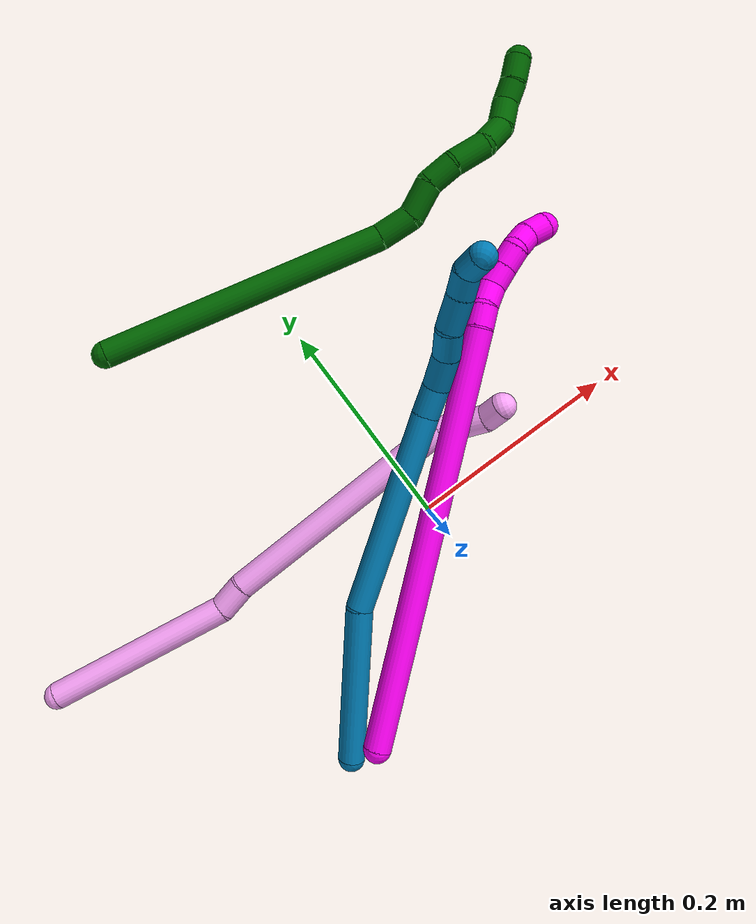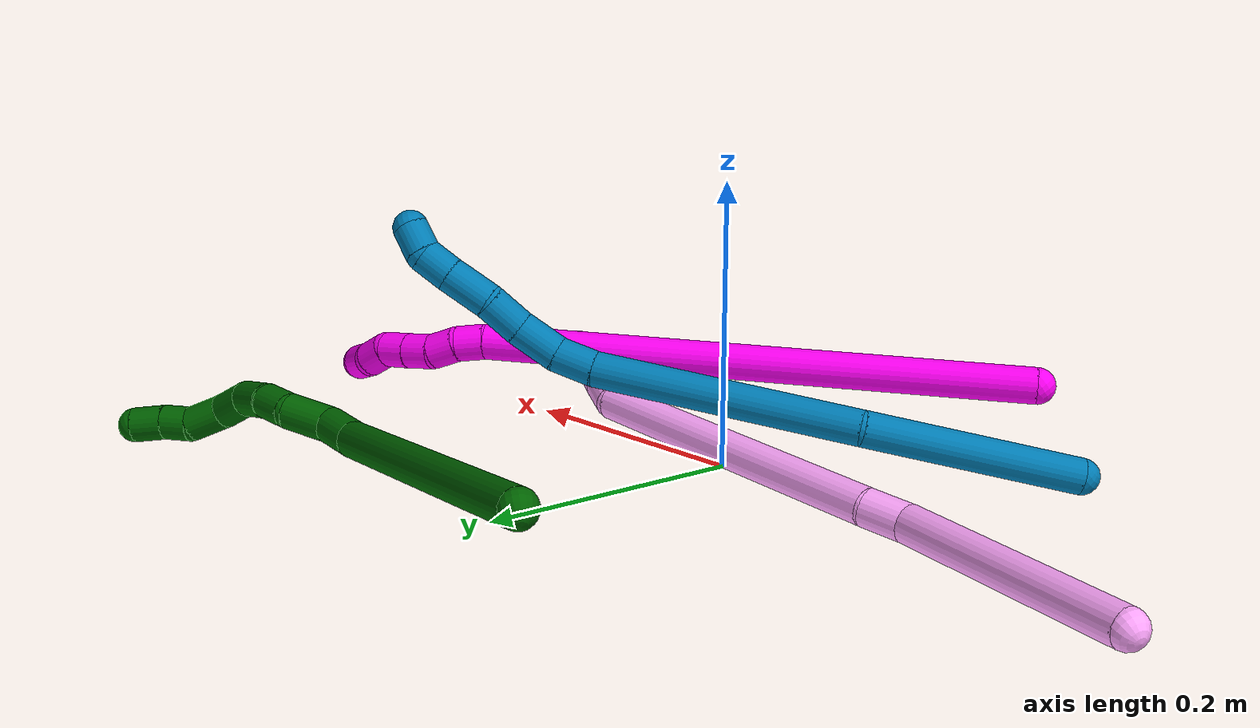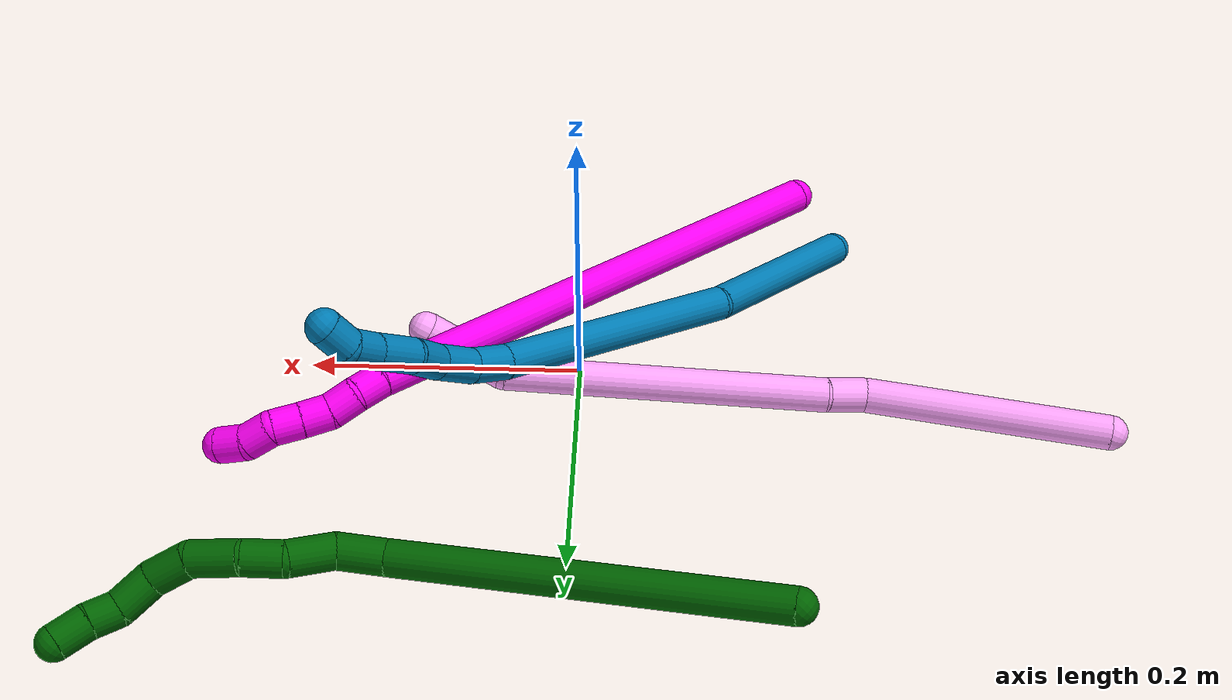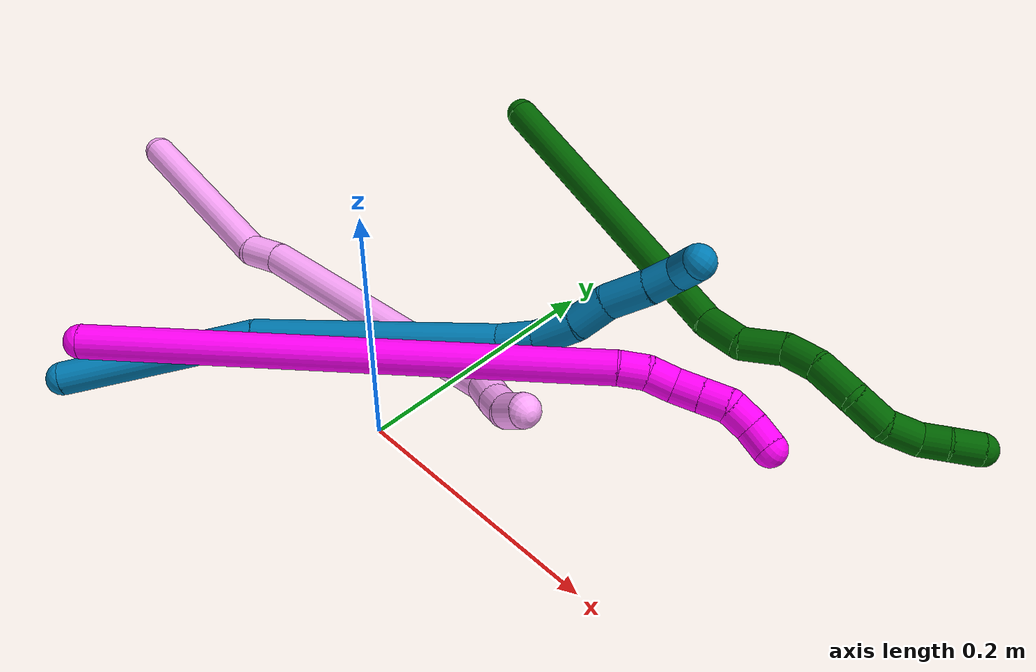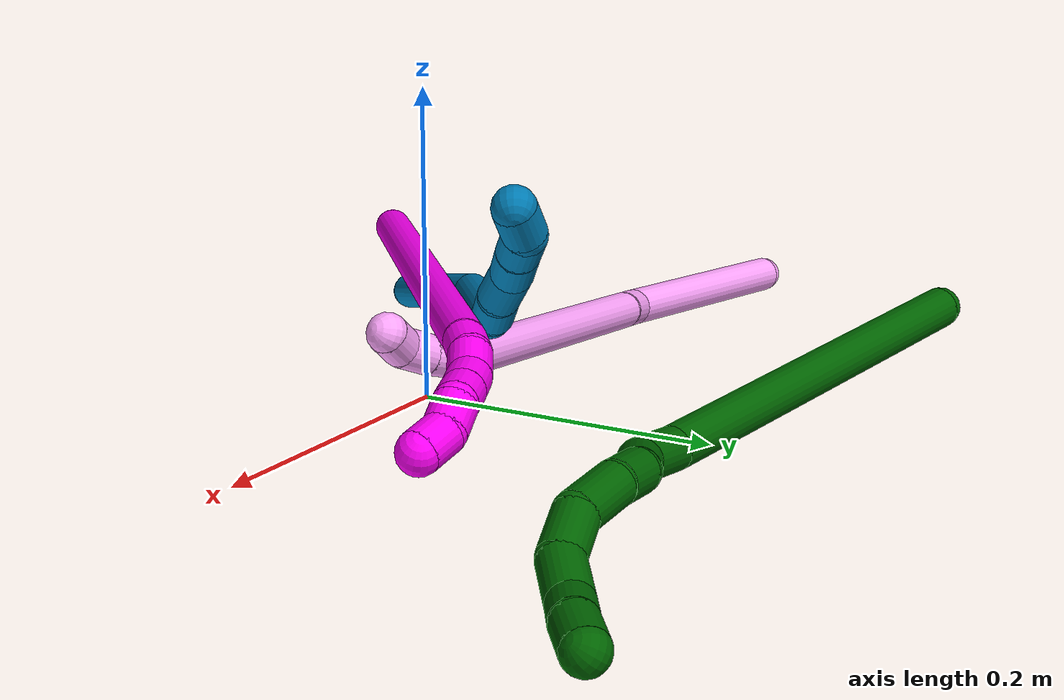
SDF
<sdf version="1.7">
 <world name="default">
  <model name="4">
   <static>0</static>
   <link name="4">
    <collision name="collision-cylinder-e_1_1_4">
     <pose>0.017369 0.023806 -0.082576 -2.86091 0.199422 -1.23237</pose>
     <geometry><cylinder><radius>0.0125</radius><length>0.175353</length></cylinder></geometry>
     <surface>
      <friction><ode><mu>1.16</mu><mu2>1.16</mu2><slip1>0</slip1><slip2>0</slip2></ode></friction>
      <contact><ode><kp>1e+06</kp><kd>1</kd><max_vel>0</max_vel><min_depth>0.001</min_depth></ode></contact>
     </surface>
    </collision>
    <visual name="visual-cylinder-e_1_1_4">
     <pose>0.017369 0.023806 -0.082576 -2.86091 0.199422 -1.23237</pose>
     <geometry><cylinder><radius>0.0125</radius><length>0.175353</length></cylinder></geometry>
     <material><ambient>1 0.65098 0.996078 1</ambient></material>
    </visual>
    <collision name="collision-cylinder-e_2_4_5">
     <pose>0.041721 0.047844 -0.177766 -3.12317 0.50554 -3.07029</pose>
     <geometry><cylinder><radius>0.0125</radius><length>0.028841</length></cylinder></geometry>
     <surface>
      <friction><ode><mu>1.16</mu><mu2>1.16</mu2><slip1>0</slip1><slip2>0</slip2></ode></friction>
      <contact><ode><kp>1e+06</kp><kd>1</kd><max_vel>0</max_vel><min_depth>0.001</min_depth></ode></contact>
     </surface>
    </collision>
    <visual name="visual-cylinder-e_2_4_5">
     <pose>0.041721 0.047844 -0.177766 -3.12317 0.50554 -3.07029</pose>
     <geometry><cylinder><radius>0.0125</radius><length>0.028841</length></cylinder></geometry>
     <material><ambient>1 0.65098 0.996078 1</ambient></material>
    </visual>
    <collision name="collision-cylinder-e_3_5_6">
     <pose>0.089085 0.066392 -0.29714 -2.97169 0.356825 -2.25925</pose>
     <geometry><cylinder><radius>0.0125</radius><length>0.231203</length></cylinder></geometry>
     <surface>
      <friction><ode><mu>1.16</mu><mu2>1.16</mu2><slip1>0</slip1><slip2>0</slip2></ode></friction>
      <contact><ode><kp>1e+06</kp><kd>1</kd><max_vel>0</max_vel><min_depth>0.001</min_depth></ode></contact>
     </surface>
    </collision>
    <visual name="visual-cylinder-e_3_5_6">
     <pose>0.089085 0.066392 -0.29714 -2.97169 0.356825 -2.25925</pose>
     <geometry><cylinder><radius>0.0125</radius><length>0.231203</length></cylinder></geometry>
     <material><ambient>1 0.65098 0.996078 1</ambient></material>
    </visual>
    <collision name="collision-cylinder-e_4_6_7">
     <pose>0.128346 0.086375 -0.415837 -3.00273 -0.092509 1.17453</pose>
     <geometry><cylinder><radius>0.0125</radius><length>0.024208</length></cylinder></geometry>
     <surface>
      <friction><ode><mu>1.16</mu><mu2>1.16</mu2><slip1>0</slip1><slip2>0</slip2></ode></friction>
      <contact><ode><kp>1e+06</kp><kd>1</kd><max_vel>0</max_vel><min_depth>0.001</min_depth></ode></contact>
     </surface>
    </collision>
    <visual name="visual-cylinder-e_4_6_7">
     <pose>0.128346 0.086375 -0.415837 -3.00273 -0.092509 1.17453</pose>
     <geometry><cylinder><radius>0.0125</radius><length>0.024208</length></cylinder></geometry>
     <material><ambient>1 0.65098 0.996078 1</ambient></material>
    </visual>
    <collision name="collision-cylinder-e_5_7_8">
     <pose>0.126192 0.088174 -0.437821 -3.12857 -0.102788 2.88981</pose>
     <geometry><cylinder><radius>0.0125</radius><length>0.020205</length></cylinder></geometry>
     <surface>
      <friction><ode><mu>1.16</mu><mu2>1.16</mu2><slip1>0</slip1><slip2>0</slip2></ode></friction>
      <contact><ode><kp>1e+06</kp><kd>1</kd><max_vel>0</max_vel><min_depth>0.001</min_depth></ode></contact>
     </surface>
    </collision>
    <visual name="visual-cylinder-e_5_7_8">
     <pose>0.126192 0.088174 -0.437821 -3.12857 -0.102788 2.88981</pose>
     <geometry><cylinder><radius>0.0125</radius><length>0.020205</length></cylinder></geometry>
     <material><ambient>1 0.65098 0.996078 1</ambient></material>
    </visual>
    <collision name="collision-cylinder-e_6_8_2">
     <pose>0.126546 0.084743 -0.457213 2.7774 0.138242 0.719259</pose>
     <geometry><cylinder><radius>0.0125</radius><length>0.02019</length></cylinder></geometry>
     <surface>
      <friction><ode><mu>1.16</mu><mu2>1.16</mu2><slip1>0</slip1><slip2>0</slip2></ode></friction>
      <contact><ode><kp>1e+06</kp><kd>1</kd><max_vel>0</max_vel><min_depth>0.001</min_depth></ode></contact>
     </surface>
    </collision>
    <visual name="visual-cylinder-e_6_8_2">
     <pose>0.126546 0.084743 -0.457213 2.7774 0.138242 0.719259</pose>
     <geometry><cylinder><radius>0.0125</radius><length>0.02019</length></cylinder></geometry>
     <material><ambient>1 0.65098 0.996078 1</ambient></material>
    </visual>
    <collision name="collision-sphere-2">
     <pose>0.127937 0.081182 -0.466556 0 -0 0</pose>
     <geometry><sphere><radius>0.0125</radius></sphere></geometry>
     <surface>
      <friction><ode><mu>1.16</mu><mu2>1.16</mu2><slip1>0</slip1><slip2>0</slip2></ode></friction>
      <contact><ode><kp>1e+06</kp><kd>1</kd><max_vel>0</max_vel><min_depth>0.001</min_depth></ode></contact>
     </surface>
    </collision>
    <visual name="visual-sphere-2">
     <pose>0.127937 0.081182 -0.466556 0 -0 0</pose>
     <geometry><sphere><radius>0.0125</radius></sphere></geometry>
     <material><ambient>1 0.65098 0.996078 1</ambient></material>
    </visual>
    <collision name="collision-sphere-4">
     <pose>0.034738 0.047612 -0.165151 0 -0 0</pose>
     <geometry><sphere><radius>0.0125</radius></sphere></geometry>
     <surface>
      <friction><ode><mu>1.16</mu><mu2>1.16</mu2><slip1>0</slip1><slip2>0</slip2></ode></friction>
      <contact><ode><kp>1e+06</kp><kd>1</kd><max_vel>0</max_vel><min_depth>0.001</min_depth></ode></contact>
     </surface>
    </collision>
    <visual name="visual-sphere-4">
     <pose>0.034738 0.047612 -0.165151 0 -0 0</pose>
     <geometry><sphere><radius>0.0125</radius></sphere></geometry>
     <material><ambient>1 0.65098 0.996078 1</ambient></material>
    </visual>
    <collision name="collision-sphere-1">
     <geometry><sphere><radius>0.0125</radius></sphere></geometry>
     <surface>
      <friction><ode><mu>1.16</mu><mu2>1.16</mu2><slip1>0</slip1><slip2>0</slip2></ode></friction>
      <contact><ode><kp>1e+06</kp><kd>1</kd><max_vel>0</max_vel><min_depth>0.001</min_depth></ode></contact>
     </surface>
    </collision>
    <visual name="visual-sphere-1">
     <geometry><sphere><radius>0.0125</radius></sphere></geometry>
     <material><ambient>1 0.65098 0.996078 1</ambient></material>
    </visual>
    <collision name="collision-sphere-8">
     <pose>0.125155 0.088305 -0.44787 0 -0 0</pose>
     <geometry><sphere><radius>0.0125</radius></sphere></geometry>
     <surface>
      <friction><ode><mu>1.16</mu><mu2>1.16</mu2><slip1>0</slip1><slip2>0</slip2></ode></friction>
      <contact><ode><kp>1e+06</kp><kd>1</kd><max_vel>0</max_vel><min_depth>0.001</min_depth></ode></contact>
     </surface>
    </collision>
    <visual name="visual-sphere-8">
     <pose>0.125155 0.088305 -0.44787 0 -0 0</pose>
     <geometry><sphere><radius>0.0125</radius></sphere></geometry>
     <material><ambient>1 0.65098 0.996078 1</ambient></material>
    </visual>
    <collision name="collision-sphere-5">
     <pose>0.048705 0.048077 -0.19038 0 -0 0</pose>
     <geometry><sphere><radius>0.0125</radius></sphere></geometry>
     <surface>
      <friction><ode><mu>1.16</mu><mu2>1.16</mu2><slip1>0</slip1><slip2>0</slip2></ode></friction>
      <contact><ode><kp>1e+06</kp><kd>1</kd><max_vel>0</max_vel><min_depth>0.001</min_depth></ode></contact>
     </surface>
    </collision>
    <visual name="visual-sphere-5">
     <pose>0.048705 0.048077 -0.19038 0 -0 0</pose>
     <geometry><sphere><radius>0.0125</radius></sphere></geometry>
     <material><ambient>1 0.65098 0.996078 1</ambient></material>
    </visual>
    <collision name="collision-sphere-6">
     <pose>0.129464 0.084707 -0.403901 0 -0 0</pose>
     <geometry><sphere><radius>0.0125</radius></sphere></geometry>
     <surface>
      <friction><ode><mu>1.16</mu><mu2>1.16</mu2><slip1>0</slip1><slip2>0</slip2></ode></friction>
      <contact><ode><kp>1e+06</kp><kd>1</kd><max_vel>0</max_vel><min_depth>0.001</min_depth></ode></contact>
     </surface>
    </collision>
    <visual name="visual-sphere-6">
     <pose>0.129464 0.084707 -0.403901 0 -0 0</pose>
     <geometry><sphere><radius>0.0125</radius></sphere></geometry>
     <material><ambient>1 0.65098 0.996078 1</ambient></material>
    </visual>
    <collision name="collision-sphere-7">
     <pose>0.127228 0.088043 -0.427773 0 -0 0</pose>
     <geometry><sphere><radius>0.0125</radius></sphere></geometry>
     <surface>
      <friction><ode><mu>1.16</mu><mu2>1.16</mu2><slip1>0</slip1><slip2>0</slip2></ode></friction>
      <contact><ode><kp>1e+06</kp><kd>1</kd><max_vel>0</max_vel><min_depth>0.001</min_depth></ode></contact>
     </surface>
    </collision>
    <visual name="visual-sphere-7">
     <pose>0.127228 0.088043 -0.427773 0 -0 0</pose>
     <geometry><sphere><radius>0.0125</radius></sphere></geometry>
     <material><ambient>1 0.65098 0.996078 1</ambient></material>
    </visual>
    <inertial>
     <pose>0.066115 0.052976 -0.232901 0 -0 0</pose>
     <mass>0.5</mass>
     <inertia>
      <ixx>-0.001633</ixx>
      <ixy>0</ixy>
      <ixz>0</ixz>
      <iyy>-0.000585</iyy>
      <iyz>0</iyz>
      <izz>-0.000779</izz>
     </inertia>
    </inertial>
   </link>
   <pose>-0.380428 0.068036 0.011842 -1.96076 0.295517 1.2</pose>
  </model>
  <model name="6">
   <static>0</static>
   <link name="6">
    <collision name="collision-cylinder-e_1_1_4">
     <pose>0.092838 -0.007052 -0.096314 3.0685 0.76569 2.96052</pose>
     <geometry><cylinder><radius>0.0125</radius><length>0.267918</length></cylinder></geometry>
     <surface>
      <friction><ode><mu>1.16</mu><mu2>1.16</mu2><slip1>0</slip1><slip2>0</slip2></ode></friction>
      <contact><ode><kp>1e+06</kp><kd>1</kd><max_vel>0</max_vel><min_depth>0.001</min_depth></ode></contact>
     </surface>
    </collision>
    <visual name="visual-cylinder-e_1_1_4">
     <pose>0.092838 -0.007052 -0.096314 3.0685 0.76569 2.96052</pose>
     <geometry><cylinder><radius>0.0125</radius><length>0.267918</length></cylinder></geometry>
     <material><ambient>0 0.392157 0.003922 1</ambient></material>
    </visual>
    <collision name="collision-cylinder-e_2_4_5">
     <pose>0.195314 -0.018119 -0.206105 2.85207 0.600814 2.26189</pose>
     <geometry><cylinder><radius>0.0125</radius><length>0.034098</length></cylinder></geometry>
     <surface>
      <friction><ode><mu>1.16</mu><mu2>1.16</mu2><slip1>0</slip1><slip2>0</slip2></ode></friction>
      <contact><ode><kp>1e+06</kp><kd>1</kd><max_vel>0</max_vel><min_depth>0.001</min_depth></ode></contact>
     </surface>
    </collision>
    <visual name="visual-cylinder-e_2_4_5">
     <pose>0.195314 -0.018119 -0.206105 2.85207 0.600814 2.26189</pose>
     <geometry><cylinder><radius>0.0125</radius><length>0.034098</length></cylinder></geometry>
     <material><ambient>0 0.392157 0.003922 1</ambient></material>
    </visual>
    <collision name="collision-cylinder-e_3_5_6">
     <pose>0.212034 -0.033698 -0.229686 2.28885 0.432122 0.900233</pose>
     <geometry><cylinder><radius>0.0125</radius><length>0.033819</length></cylinder></geometry>
     <surface>
      <friction><ode><mu>1.16</mu><mu2>1.16</mu2><slip1>0</slip1><slip2>0</slip2></ode></friction>
      <contact><ode><kp>1e+06</kp><kd>1</kd><max_vel>0</max_vel><min_depth>0.001</min_depth></ode></contact>
     </surface>
    </collision>
    <visual name="visual-cylinder-e_3_5_6">
     <pose>0.212034 -0.033698 -0.229686 2.28885 0.432122 0.900233</pose>
     <geometry><cylinder><radius>0.0125</radius><length>0.033819</length></cylinder></geometry>
     <material><ambient>0 0.392157 0.003922 1</ambient></material>
    </visual>
    <collision name="collision-cylinder-e_4_6_7">
     <pose>0.226958 -0.050003 -0.249961 2.70545 0.609887 1.91477</pose>
     <geometry><cylinder><radius>0.0125</radius><length>0.027385</length></cylinder></geometry>
     <surface>
      <friction><ode><mu>1.16</mu><mu2>1.16</mu2><slip1>0</slip1><slip2>0</slip2></ode></friction>
      <contact><ode><kp>1e+06</kp><kd>1</kd><max_vel>0</max_vel><min_depth>0.001</min_depth></ode></contact>
     </surface>
    </collision>
    <visual name="visual-cylinder-e_4_6_7">
     <pose>0.226958 -0.050003 -0.249961 2.70545 0.609887 1.91477</pose>
     <geometry><cylinder><radius>0.0125</radius><length>0.027385</length></cylinder></geometry>
     <material><ambient>0 0.392157 0.003922 1</ambient></material>
    </visual>
    <collision name="collision-cylinder-e_5_7_8">
     <pose>0.247594 -0.057815 -0.271421 2.87599 0.83015 2.55292</pose>
     <geometry><cylinder><radius>0.0125</radius><length>0.034668</length></cylinder></geometry>
     <surface>
      <friction><ode><mu>1.16</mu><mu2>1.16</mu2><slip1>0</slip1><slip2>0</slip2></ode></friction>
      <contact><ode><kp>1e+06</kp><kd>1</kd><max_vel>0</max_vel><min_depth>0.001</min_depth></ode></contact>
     </surface>
    </collision>
    <visual name="visual-cylinder-e_5_7_8">
     <pose>0.247594 -0.057815 -0.271421 2.87599 0.83015 2.55292</pose>
     <geometry><cylinder><radius>0.0125</radius><length>0.034668</length></cylinder></geometry>
     <material><ambient>0 0.392157 0.003922 1</ambient></material>
    </visual>
    <collision name="collision-cylinder-e_6_8_9">
     <pose>0.273388 -0.065475 -0.286804 2.29952 1.12874 1.91026</pose>
     <geometry><cylinder><radius>0.0125</radius><length>0.028767</length></cylinder></geometry>
     <surface>
      <friction><ode><mu>1.16</mu><mu2>1.16</mu2><slip1>0</slip1><slip2>0</slip2></ode></friction>
      <contact><ode><kp>1e+06</kp><kd>1</kd><max_vel>0</max_vel><min_depth>0.001</min_depth></ode></contact>
     </surface>
    </collision>
    <visual name="visual-cylinder-e_6_8_9">
     <pose>0.273388 -0.065475 -0.286804 2.29952 1.12874 1.91026</pose>
     <geometry><cylinder><radius>0.0125</radius><length>0.028767</length></cylinder></geometry>
     <material><ambient>0 0.392157 0.003922 1</ambient></material>
    </visual>
    <collision name="collision-cylinder-e_7_9_10">
     <pose>0.296972 -0.079384 -0.291852 1.67237 0.846294 0.925035</pose>
     <geometry><cylinder><radius>0.0125</radius><length>0.028266</length></cylinder></geometry>
     <surface>
      <friction><ode><mu>1.16</mu><mu2>1.16</mu2><slip1>0</slip1><slip2>0</slip2></ode></friction>
      <contact><ode><kp>1e+06</kp><kd>1</kd><max_vel>0</max_vel><min_depth>0.001</min_depth></ode></contact>
     </surface>
    </collision>
    <visual name="visual-cylinder-e_7_9_10">
     <pose>0.296972 -0.079384 -0.291852 1.67237 0.846294 0.925035</pose>
     <geometry><cylinder><radius>0.0125</radius><length>0.028266</length></cylinder></geometry>
     <material><ambient>0 0.392157 0.003922 1</ambient></material>
    </visual>
    <collision name="collision-cylinder-e_8_10_11">
     <pose>0.313038 -0.096603 -0.296998 2.05908 0.549946 0.877592</pose>
     <geometry><cylinder><radius>0.0125</radius><length>0.020984</length></cylinder></geometry>
     <surface>
      <friction><ode><mu>1.16</mu><mu2>1.16</mu2><slip1>0</slip1><slip2>0</slip2></ode></friction>
      <contact><ode><kp>1e+06</kp><kd>1</kd><max_vel>0</max_vel><min_depth>0.001</min_depth></ode></contact>
     </surface>
    </collision>
    <visual name="visual-cylinder-e_8_10_11">
     <pose>0.313038 -0.096603 -0.296998 2.05908 0.549946 0.877592</pose>
     <geometry><cylinder><radius>0.0125</radius><length>0.020984</length></cylinder></geometry>
     <material><ambient>0 0.392157 0.003922 1</ambient></material>
    </visual>
    <collision name="collision-cylinder-e_9_11_2">
     <pose>0.32541 -0.113985 -0.303984 1.85691 0.608578 0.794811</pose>
     <geometry><cylinder><radius>0.0125</radius><length>0.024096</length></cylinder></geometry>
     <surface>
      <friction><ode><mu>1.16</mu><mu2>1.16</mu2><slip1>0</slip1><slip2>0</slip2></ode></friction>
      <contact><ode><kp>1e+06</kp><kd>1</kd><max_vel>0</max_vel><min_depth>0.001</min_depth></ode></contact>
     </surface>
    </collision>
    <visual name="visual-cylinder-e_9_11_2">
     <pose>0.32541 -0.113985 -0.303984 1.85691 0.608578 0.794811</pose>
     <geometry><cylinder><radius>0.0125</radius><length>0.024096</length></cylinder></geometry>
     <material><ambient>0 0.392157 0.003922 1</ambient></material>
    </visual>
    <collision name="collision-sphere-2">
     <pose>0.332298 -0.123468 -0.306773 0 -0 0</pose>
     <geometry><sphere><radius>0.0125</radius></sphere></geometry>
     <surface>
      <friction><ode><mu>1.16</mu><mu2>1.16</mu2><slip1>0</slip1><slip2>0</slip2></ode></friction>
      <contact><ode><kp>1e+06</kp><kd>1</kd><max_vel>0</max_vel><min_depth>0.001</min_depth></ode></contact>
     </surface>
    </collision>
    <visual name="visual-sphere-2">
     <pose>0.332298 -0.123468 -0.306773 0 -0 0</pose>
     <geometry><sphere><radius>0.0125</radius></sphere></geometry>
     <material><ambient>0 0.392157 0.003922 1</ambient></material>
    </visual>
    <collision name="collision-sphere-11">
     <pose>0.318522 -0.104502 -0.301194 0 -0 0</pose>
     <geometry><sphere><radius>0.0125</radius></sphere></geometry>
     <surface>
      <friction><ode><mu>1.16</mu><mu2>1.16</mu2><slip1>0</slip1><slip2>0</slip2></ode></friction>
      <contact><ode><kp>1e+06</kp><kd>1</kd><max_vel>0</max_vel><min_depth>0.001</min_depth></ode></contact>
     </surface>
    </collision>
    <visual name="visual-sphere-11">
     <pose>0.318522 -0.104502 -0.301194 0 -0 0</pose>
     <geometry><sphere><radius>0.0125</radius></sphere></geometry>
     <material><ambient>0 0.392157 0.003922 1</ambient></material>
    </visual>
    <collision name="collision-sphere-10">
     <pose>0.307555 -0.088703 -0.292801 0 -0 0</pose>
     <geometry><sphere><radius>0.0125</radius></sphere></geometry>
     <surface>
      <friction><ode><mu>1.16</mu><mu2>1.16</mu2><slip1>0</slip1><slip2>0</slip2></ode></friction>
      <contact><ode><kp>1e+06</kp><kd>1</kd><max_vel>0</max_vel><min_depth>0.001</min_depth></ode></contact>
     </surface>
    </collision>
    <visual name="visual-sphere-10">
     <pose>0.307555 -0.088703 -0.292801 0 -0 0</pose>
     <geometry><sphere><radius>0.0125</radius></sphere></geometry>
     <material><ambient>0 0.392157 0.003922 1</ambient></material>
    </visual>
    <collision name="collision-sphere-9">
     <pose>0.286389 -0.070066 -0.290902 0 -0 0</pose>
     <geometry><sphere><radius>0.0125</radius></sphere></geometry>
     <surface>
      <friction><ode><mu>1.16</mu><mu2>1.16</mu2><slip1>0</slip1><slip2>0</slip2></ode></friction>
      <contact><ode><kp>1e+06</kp><kd>1</kd><max_vel>0</max_vel><min_depth>0.001</min_depth></ode></contact>
     </surface>
    </collision>
    <visual name="visual-sphere-9">
     <pose>0.286389 -0.070066 -0.290902 0 -0 0</pose>
     <geometry><sphere><radius>0.0125</radius></sphere></geometry>
     <material><ambient>0 0.392157 0.003922 1</ambient></material>
    </visual>
    <collision name="collision-sphere-4">
     <pose>0.185676 -0.014104 -0.192627 0 -0 0</pose>
     <geometry><sphere><radius>0.0125</radius></sphere></geometry>
     <surface>
      <friction><ode><mu>1.16</mu><mu2>1.16</mu2><slip1>0</slip1><slip2>0</slip2></ode></friction>
      <contact><ode><kp>1e+06</kp><kd>1</kd><max_vel>0</max_vel><min_depth>0.001</min_depth></ode></contact>
     </surface>
    </collision>
    <visual name="visual-sphere-4">
     <pose>0.185676 -0.014104 -0.192627 0 -0 0</pose>
     <geometry><sphere><radius>0.0125</radius></sphere></geometry>
     <material><ambient>0 0.392157 0.003922 1</ambient></material>
    </visual>
    <collision name="collision-sphere-1">
     <geometry><sphere><radius>0.0125</radius></sphere></geometry>
     <surface>
      <friction><ode><mu>1.16</mu><mu2>1.16</mu2><slip1>0</slip1><slip2>0</slip2></ode></friction>
      <contact><ode><kp>1e+06</kp><kd>1</kd><max_vel>0</max_vel><min_depth>0.001</min_depth></ode></contact>
     </surface>
    </collision>
    <visual name="visual-sphere-1">
     <geometry><sphere><radius>0.0125</radius></sphere></geometry>
     <material><ambient>0 0.392157 0.003922 1</ambient></material>
    </visual>
    <collision name="collision-sphere-8">
     <pose>0.260387 -0.060885 -0.282707 0 -0 0</pose>
     <geometry><sphere><radius>0.0125</radius></sphere></geometry>
     <surface>
      <friction><ode><mu>1.16</mu><mu2>1.16</mu2><slip1>0</slip1><slip2>0</slip2></ode></friction>
      <contact><ode><kp>1e+06</kp><kd>1</kd><max_vel>0</max_vel><min_depth>0.001</min_depth></ode></contact>
     </surface>
    </collision>
    <visual name="visual-sphere-8">
     <pose>0.260387 -0.060885 -0.282707 0 -0 0</pose>
     <geometry><sphere><radius>0.0125</radius></sphere></geometry>
     <material><ambient>0 0.392157 0.003922 1</ambient></material>
    </visual>
    <collision name="collision-sphere-5">
     <pose>0.204952 -0.022134 -0.219583 0 -0 0</pose>
     <geometry><sphere><radius>0.0125</radius></sphere></geometry>
     <surface>
      <friction><ode><mu>1.16</mu><mu2>1.16</mu2><slip1>0</slip1><slip2>0</slip2></ode></friction>
      <contact><ode><kp>1e+06</kp><kd>1</kd><max_vel>0</max_vel><min_depth>0.001</min_depth></ode></contact>
     </surface>
    </collision>
    <visual name="visual-sphere-5">
     <pose>0.204952 -0.022134 -0.219583 0 -0 0</pose>
     <geometry><sphere><radius>0.0125</radius></sphere></geometry>
     <material><ambient>0 0.392157 0.003922 1</ambient></material>
    </visual>
    <collision name="collision-sphere-6">
     <pose>0.219116 -0.045262 -0.239788 0 -0 0</pose>
     <geometry><sphere><radius>0.0125</radius></sphere></geometry>
     <surface>
      <friction><ode><mu>1.16</mu><mu2>1.16</mu2><slip1>0</slip1><slip2>0</slip2></ode></friction>
      <contact><ode><kp>1e+06</kp><kd>1</kd><max_vel>0</max_vel><min_depth>0.001</min_depth></ode></contact>
     </surface>
    </collision>
    <visual name="visual-sphere-6">
     <pose>0.219116 -0.045262 -0.239788 0 -0 0</pose>
     <geometry><sphere><radius>0.0125</radius></sphere></geometry>
     <material><ambient>0 0.392157 0.003922 1</ambient></material>
    </visual>
    <collision name="collision-sphere-7">
     <pose>0.234801 -0.054745 -0.260134 0 -0 0</pose>
     <geometry><sphere><radius>0.0125</radius></sphere></geometry>
     <surface>
      <friction><ode><mu>1.16</mu><mu2>1.16</mu2><slip1>0</slip1><slip2>0</slip2></ode></friction>
      <contact><ode><kp>1e+06</kp><kd>1</kd><max_vel>0</max_vel><min_depth>0.001</min_depth></ode></contact>
     </surface>
    </collision>
    <visual name="visual-sphere-7">
     <pose>0.234801 -0.054745 -0.260134 0 -0 0</pose>
     <geometry><sphere><radius>0.0125</radius></sphere></geometry>
     <material><ambient>0 0.392157 0.003922 1</ambient></material>
    </visual>
    <inertial>
     <pose>0.168342 -0.031843 -0.173822 0 -0 0</pose>
     <mass>0.5</mass>
     <inertia>
      <ixx>-0.000894</ixx>
      <ixy>0</ixy>
      <ixz>0</ixz>
      <iyy>0.001825</iyy>
      <iyz>0</iyz>
      <izz>-0.001062</izz>
     </inertia>
    </inertial>
   </link>
   <pose>-0.1473 0.287963 0.063211 -2.78585 0.891448 -0.018324</pose>
  </model>
  <model name="9">
   <static>0</static>
   <link name="9">
    <collision name="collision-cylinder-e_1_1_4">
     <pose>-0.007329 0.059676 -0.044658 -2.21324 -0.098008 0.19529</pose>
     <geometry><cylinder><radius>0.0125</radius><length>0.149789</length></cylinder></geometry>
     <surface>
      <friction><ode><mu>1.16</mu><mu2>1.16</mu2><slip1>0</slip1><slip2>0</slip2></ode></friction>
      <contact><ode><kp>1e+06</kp><kd>1</kd><max_vel>0</max_vel><min_depth>0.001</min_depth></ode></contact>
     </surface>
    </collision>
    <visual name="visual-cylinder-e_1_1_4">
     <pose>-0.007329 0.059676 -0.044658 -2.21324 -0.098008 0.19529</pose>
     <geometry><cylinder><radius>0.0125</radius><length>0.149789</length></cylinder></geometry>
     <material><ambient>0 0.490196 0.709804 1</ambient></material>
    </visual>
    <collision name="collision-cylinder-e_2_4_5">
     <pose>-0.00122 0.185245 -0.153093 -2.33988 0.145497 -0.340588</pose>
     <geometry><cylinder><radius>0.0125</radius><length>0.185366</length></cylinder></geometry>
     <surface>
      <friction><ode><mu>1.16</mu><mu2>1.16</mu2><slip1>0</slip1><slip2>0</slip2></ode></friction>
      <contact><ode><kp>1e+06</kp><kd>1</kd><max_vel>0</max_vel><min_depth>0.001</min_depth></ode></contact>
     </surface>
    </collision>
    <visual name="visual-cylinder-e_2_4_5">
     <pose>-0.00122 0.185245 -0.153093 -2.33988 0.145497 -0.340588</pose>
     <geometry><cylinder><radius>0.0125</radius><length>0.185366</length></cylinder></geometry>
     <material><ambient>0 0.490196 0.709804 1</ambient></material>
    </visual>
    <collision name="collision-cylinder-e_3_5_6">
     <pose>0.014903 0.262404 -0.224835 -2.18613 0.192211 -0.368186</pose>
     <geometry><cylinder><radius>0.0125</radius><length>0.028111</length></cylinder></geometry>
     <surface>
      <friction><ode><mu>1.16</mu><mu2>1.16</mu2><slip1>0</slip1><slip2>0</slip2></ode></friction>
      <contact><ode><kp>1e+06</kp><kd>1</kd><max_vel>0</max_vel><min_depth>0.001</min_depth></ode></contact>
     </surface>
    </collision>
    <visual name="visual-cylinder-e_3_5_6">
     <pose>0.014903 0.262404 -0.224835 -2.18613 0.192211 -0.368186</pose>
     <geometry><cylinder><radius>0.0125</radius><length>0.028111</length></cylinder></geometry>
     <material><ambient>0 0.490196 0.709804 1</ambient></material>
    </visual>
    <collision name="collision-cylinder-e_4_6_7">
     <pose>0.020347 0.288429 -0.238071 -1.9139 0.174233 -0.246629</pose>
     <geometry><cylinder><radius>0.0125</radius><length>0.031826</length></cylinder></geometry>
     <surface>
      <friction><ode><mu>1.16</mu><mu2>1.16</mu2><slip1>0</slip1><slip2>0</slip2></ode></friction>
      <contact><ode><kp>1e+06</kp><kd>1</kd><max_vel>0</max_vel><min_depth>0.001</min_depth></ode></contact>
     </surface>
    </collision>
    <visual name="visual-cylinder-e_4_6_7">
     <pose>0.020347 0.288429 -0.238071 -1.9139 0.174233 -0.246629</pose>
     <geometry><cylinder><radius>0.0125</radius><length>0.031826</length></cylinder></geometry>
     <material><ambient>0 0.490196 0.709804 1</ambient></material>
    </visual>
    <collision name="collision-cylinder-e_5_7_8">
     <pose>0.023455 0.316928 -0.245384 -1.71819 0.025187 -0.029203</pose>
     <geometry><cylinder><radius>0.0125</radius><length>0.027791</length></cylinder></geometry>
     <surface>
      <friction><ode><mu>1.16</mu><mu2>1.16</mu2><slip1>0</slip1><slip2>0</slip2></ode></friction>
      <contact><ode><kp>1e+06</kp><kd>1</kd><max_vel>0</max_vel><min_depth>0.001</min_depth></ode></contact>
     </surface>
    </collision>
    <visual name="visual-cylinder-e_5_7_8">
     <pose>0.023455 0.316928 -0.245384 -1.71819 0.025187 -0.029203</pose>
     <geometry><cylinder><radius>0.0125</radius><length>0.027791</length></cylinder></geometry>
     <material><ambient>0 0.490196 0.709804 1</ambient></material>
    </visual>
    <collision name="collision-cylinder-e_6_8_9">
     <pose>0.026757 0.345848 -0.252953 -1.92011 0.180722 -0.257439</pose>
     <geometry><cylinder><radius>0.0125</radius><length>0.032844</length></cylinder></geometry>
     <surface>
      <friction><ode><mu>1.16</mu><mu2>1.16</mu2><slip1>0</slip1><slip2>0</slip2></ode></friction>
      <contact><ode><kp>1e+06</kp><kd>1</kd><max_vel>0</max_vel><min_depth>0.001</min_depth></ode></contact>
     </surface>
    </collision>
    <visual name="visual-cylinder-e_6_8_9">
     <pose>0.026757 0.345848 -0.252953 -1.92011 0.180722 -0.257439</pose>
     <geometry><cylinder><radius>0.0125</radius><length>0.032844</length></cylinder></geometry>
     <material><ambient>0 0.490196 0.709804 1</ambient></material>
    </visual>
    <collision name="collision-cylinder-e_7_9_10">
     <pose>0.031188 0.3719 -0.261454 -1.83763 0.130479 -0.17076</pose>
     <geometry><cylinder><radius>0.0125</radius><length>0.022737</length></cylinder></geometry>
     <surface>
      <friction><ode><mu>1.16</mu><mu2>1.16</mu2><slip1>0</slip1><slip2>0</slip2></ode></friction>
      <contact><ode><kp>1e+06</kp><kd>1</kd><max_vel>0</max_vel><min_depth>0.001</min_depth></ode></contact>
     </surface>
    </collision>
    <visual name="visual-cylinder-e_7_9_10">
     <pose>0.031188 0.3719 -0.261454 -1.83763 0.130479 -0.17076</pose>
     <geometry><cylinder><radius>0.0125</radius><length>0.022737</length></cylinder></geometry>
     <material><ambient>0 0.490196 0.709804 1</ambient></material>
    </visual>
    <collision name="collision-cylinder-e_8_10_2">
     <pose>0.038482 0.39183 -0.264126 -1.53772 0.570509 -0.55289</pose>
     <geometry><cylinder><radius>0.0125</radius><length>0.021535</length></cylinder></geometry>
     <surface>
      <friction><ode><mu>1.16</mu><mu2>1.16</mu2><slip1>0</slip1><slip2>0</slip2></ode></friction>
      <contact><ode><kp>1e+06</kp><kd>1</kd><max_vel>0</max_vel><min_depth>0.001</min_depth></ode></contact>
     </surface>
    </collision>
    <visual name="visual-cylinder-e_8_10_2">
     <pose>0.038482 0.39183 -0.264126 -1.53772 0.570509 -0.55289</pose>
     <geometry><cylinder><radius>0.0125</radius><length>0.021535</length></cylinder></geometry>
     <material><ambient>0 0.490196 0.709804 1</ambient></material>
    </visual>
    <collision name="collision-sphere-2">
     <pose>0.044297 0.400888 -0.263827 0 -0 0</pose>
     <geometry><sphere><radius>0.0125</radius></sphere></geometry>
     <surface>
      <friction><ode><mu>1.16</mu><mu2>1.16</mu2><slip1>0</slip1><slip2>0</slip2></ode></friction>
      <contact><ode><kp>1e+06</kp><kd>1</kd><max_vel>0</max_vel><min_depth>0.001</min_depth></ode></contact>
     </surface>
    </collision>
    <visual name="visual-sphere-2">
     <pose>0.044297 0.400888 -0.263827 0 -0 0</pose>
     <geometry><sphere><radius>0.0125</radius></sphere></geometry>
     <material><ambient>0 0.490196 0.709804 1</ambient></material>
    </visual>
    <collision name="collision-sphere-10">
     <pose>0.032667 0.382773 -0.264426 0 -0 0</pose>
     <geometry><sphere><radius>0.0125</radius></sphere></geometry>
     <surface>
      <friction><ode><mu>1.16</mu><mu2>1.16</mu2><slip1>0</slip1><slip2>0</slip2></ode></friction>
      <contact><ode><kp>1e+06</kp><kd>1</kd><max_vel>0</max_vel><min_depth>0.001</min_depth></ode></contact>
     </surface>
    </collision>
    <visual name="visual-sphere-10">
     <pose>0.032667 0.382773 -0.264426 0 -0 0</pose>
     <geometry><sphere><radius>0.0125</radius></sphere></geometry>
     <material><ambient>0 0.490196 0.709804 1</ambient></material>
    </visual>
    <collision name="collision-sphere-9">
     <pose>0.029709 0.361027 -0.258482 0 -0 0</pose>
     <geometry><sphere><radius>0.0125</radius></sphere></geometry>
     <surface>
      <friction><ode><mu>1.16</mu><mu2>1.16</mu2><slip1>0</slip1><slip2>0</slip2></ode></friction>
      <contact><ode><kp>1e+06</kp><kd>1</kd><max_vel>0</max_vel><min_depth>0.001</min_depth></ode></contact>
     </surface>
    </collision>
    <visual name="visual-sphere-9">
     <pose>0.029709 0.361027 -0.258482 0 -0 0</pose>
     <geometry><sphere><radius>0.0125</radius></sphere></geometry>
     <material><ambient>0 0.490196 0.709804 1</ambient></material>
    </visual>
    <collision name="collision-sphere-4">
     <pose>-0.014657 0.119351 -0.089316 0 -0 0</pose>
     <geometry><sphere><radius>0.0125</radius></sphere></geometry>
     <surface>
      <friction><ode><mu>1.16</mu><mu2>1.16</mu2><slip1>0</slip1><slip2>0</slip2></ode></friction>
      <contact><ode><kp>1e+06</kp><kd>1</kd><max_vel>0</max_vel><min_depth>0.001</min_depth></ode></contact>
     </surface>
    </collision>
    <visual name="visual-sphere-4">
     <pose>-0.014657 0.119351 -0.089316 0 -0 0</pose>
     <geometry><sphere><radius>0.0125</radius></sphere></geometry>
     <material><ambient>0 0.490196 0.709804 1</ambient></material>
    </visual>
    <collision name="collision-sphere-1">
     <geometry><sphere><radius>0.0125</radius></sphere></geometry>
     <surface>
      <friction><ode><mu>1.16</mu><mu2>1.16</mu2><slip1>0</slip1><slip2>0</slip2></ode></friction>
      <contact><ode><kp>1e+06</kp><kd>1</kd><max_vel>0</max_vel><min_depth>0.001</min_depth></ode></contact>
     </surface>
    </collision>
    <visual name="visual-sphere-1">
     <geometry><sphere><radius>0.0125</radius></sphere></geometry>
     <material><ambient>0 0.490196 0.709804 1</ambient></material>
    </visual>
    <collision name="collision-sphere-8">
     <pose>0.023805 0.330669 -0.247424 0 -0 0</pose>
     <geometry><sphere><radius>0.0125</radius></sphere></geometry>
     <surface>
      <friction><ode><mu>1.16</mu><mu2>1.16</mu2><slip1>0</slip1><slip2>0</slip2></ode></friction>
      <contact><ode><kp>1e+06</kp><kd>1</kd><max_vel>0</max_vel><min_depth>0.001</min_depth></ode></contact>
     </surface>
    </collision>
    <visual name="visual-sphere-8">
     <pose>0.023805 0.330669 -0.247424 0 -0 0</pose>
     <geometry><sphere><radius>0.0125</radius></sphere></geometry>
     <material><ambient>0 0.490196 0.709804 1</ambient></material>
    </visual>
    <collision name="collision-sphere-5">
     <pose>0.012218 0.251138 -0.216871 0 -0 0</pose>
     <geometry><sphere><radius>0.0125</radius></sphere></geometry>
     <surface>
      <friction><ode><mu>1.16</mu><mu2>1.16</mu2><slip1>0</slip1><slip2>0</slip2></ode></friction>
      <contact><ode><kp>1e+06</kp><kd>1</kd><max_vel>0</max_vel><min_depth>0.001</min_depth></ode></contact>
     </surface>
    </collision>
    <visual name="visual-sphere-5">
     <pose>0.012218 0.251138 -0.216871 0 -0 0</pose>
     <geometry><sphere><radius>0.0125</radius></sphere></geometry>
     <material><ambient>0 0.490196 0.709804 1</ambient></material>
    </visual>
    <collision name="collision-sphere-6">
     <pose>0.017588 0.273671 -0.232799 0 -0 0</pose>
     <geometry><sphere><radius>0.0125</radius></sphere></geometry>
     <surface>
      <friction><ode><mu>1.16</mu><mu2>1.16</mu2><slip1>0</slip1><slip2>0</slip2></ode></friction>
      <contact><ode><kp>1e+06</kp><kd>1</kd><max_vel>0</max_vel><min_depth>0.001</min_depth></ode></contact>
     </surface>
    </collision>
    <visual name="visual-sphere-6">
     <pose>0.017588 0.273671 -0.232799 0 -0 0</pose>
     <geometry><sphere><radius>0.0125</radius></sphere></geometry>
     <material><ambient>0 0.490196 0.709804 1</ambient></material>
    </visual>
    <collision name="collision-sphere-7">
     <pose>0.023105 0.303188 -0.243344 0 -0 0</pose>
     <geometry><sphere><radius>0.0125</radius></sphere></geometry>
     <surface>
      <friction><ode><mu>1.16</mu><mu2>1.16</mu2><slip1>0</slip1><slip2>0</slip2></ode></friction>
      <contact><ode><kp>1e+06</kp><kd>1</kd><max_vel>0</max_vel><min_depth>0.001</min_depth></ode></contact>
     </surface>
    </collision>
    <visual name="visual-sphere-7">
     <pose>0.023105 0.303188 -0.243344 0 -0 0</pose>
     <geometry><sphere><radius>0.0125</radius></sphere></geometry>
     <material><ambient>0 0.490196 0.709804 1</ambient></material>
    </visual>
    <inertial>
     <pose>0.005622 0.193788 -0.15145 0 -0 0</pose>
     <mass>0.5</mass>
     <inertia>
      <ixx>0.000674</ixx>
      <ixy>0</ixy>
      <ixz>0</ixz>
      <iyy>-0.000597</iyy>
      <iyz>0</iyz>
      <izz>-0.0007</izz>
     </inertia>
    </inertial>
   </link>
   <pose>-0.195282 -0.142147 0.011922 0.893243 -0.231148 -0.84233</pose>
  </model>
  <model name="10">
   <static>0</static>
   <link name="10">
    <collision name="collision-cylinder-e_1_1_4">
     <pose>0.122294 0.084691 -0.117543 -2.51723 0.701077 -1.6953</pose>
     <geometry><cylinder><radius>0.0125</radius><length>0.379182</length></cylinder></geometry>
     <surface>
      <friction><ode><mu>1.16</mu><mu2>1.16</mu2><slip1>0</slip1><slip2>0</slip2></ode></friction>
      <contact><ode><kp>1e+06</kp><kd>1</kd><max_vel>0</max_vel><min_depth>0.001</min_depth></ode></contact>
     </surface>
    </collision>
    <visual name="visual-cylinder-e_1_1_4">
     <pose>0.122294 0.084691 -0.117543 -2.51723 0.701077 -1.6953</pose>
     <geometry><cylinder><radius>0.0125</radius><length>0.379182</length></cylinder></geometry>
     <material><ambient>1 0 0.964706 1</ambient></material>
    </visual>
    <collision name="collision-cylinder-e_2_4_5">
     <pose>0.251896 0.174356 -0.240031 -2.35316 0.805964 -1.5953</pose>
     <geometry><cylinder><radius>0.0125</radius><length>0.02026</length></cylinder></geometry>
     <surface>
      <friction><ode><mu>1.16</mu><mu2>1.16</mu2><slip1>0</slip1><slip2>0</slip2></ode></friction>
      <contact><ode><kp>1e+06</kp><kd>1</kd><max_vel>0</max_vel><min_depth>0.001</min_depth></ode></contact>
     </surface>
    </collision>
    <visual name="visual-cylinder-e_2_4_5">
     <pose>0.251896 0.174356 -0.240031 -2.35316 0.805964 -1.5953</pose>
     <geometry><cylinder><radius>0.0125</radius><length>0.02026</length></cylinder></geometry>
     <material><ambient>1 0 0.964706 1</ambient></material>
    </visual>
    <collision name="collision-cylinder-e_3_5_6">
     <pose>0.266413 0.186003 -0.247651 -1.95221 0.786715 -1.10064</pose>
     <geometry><cylinder><radius>0.0125</radius><length>0.02036</length></cylinder></geometry>
     <surface>
      <friction><ode><mu>1.16</mu><mu2>1.16</mu2><slip1>0</slip1><slip2>0</slip2></ode></friction>
      <contact><ode><kp>1e+06</kp><kd>1</kd><max_vel>0</max_vel><min_depth>0.001</min_depth></ode></contact>
     </surface>
    </collision>
    <visual name="visual-cylinder-e_3_5_6">
     <pose>0.266413 0.186003 -0.247651 -1.95221 0.786715 -1.10064</pose>
     <geometry><cylinder><radius>0.0125</radius><length>0.02036</length></cylinder></geometry>
     <material><ambient>1 0 0.964706 1</ambient></material>
    </visual>
    <collision name="collision-cylinder-e_4_6_7">
     <pose>0.278729 0.199883 -0.255182 -2.1636 0.531439 -0.945568</pose>
     <geometry><cylinder><radius>0.0125</radius><length>0.020161</length></cylinder></geometry>
     <surface>
      <friction><ode><mu>1.16</mu><mu2>1.16</mu2><slip1>0</slip1><slip2>0</slip2></ode></friction>
      <contact><ode><kp>1e+06</kp><kd>1</kd><max_vel>0</max_vel><min_depth>0.001</min_depth></ode></contact>
     </surface>
    </collision>
    <visual name="visual-cylinder-e_4_6_7">
     <pose>0.278729 0.199883 -0.255182 -2.1636 0.531439 -0.945568</pose>
     <geometry><cylinder><radius>0.0125</radius><length>0.020161</length></cylinder></geometry>
     <material><ambient>1 0 0.964706 1</ambient></material>
    </visual>
    <collision name="collision-cylinder-e_5_7_8">
     <pose>0.288559 0.214338 -0.265057 -2.17657 0.491698 -0.893478</pose>
     <geometry><cylinder><radius>0.0125</radius><length>0.020004</length></cylinder></geometry>
     <surface>
      <friction><ode><mu>1.16</mu><mu2>1.16</mu2><slip1>0</slip1><slip2>0</slip2></ode></friction>
      <contact><ode><kp>1e+06</kp><kd>1</kd><max_vel>0</max_vel><min_depth>0.001</min_depth></ode></contact>
     </surface>
    </collision>
    <visual name="visual-cylinder-e_5_7_8">
     <pose>0.288559 0.214338 -0.265057 -2.17657 0.491698 -0.893478</pose>
     <geometry><cylinder><radius>0.0125</radius><length>0.020004</length></cylinder></geometry>
     <material><ambient>1 0 0.964706 1</ambient></material>
    </visual>
    <collision name="collision-cylinder-e_6_8_9">
     <pose>0.298714 0.229979 -0.270576 -1.63006 0.573643 -0.606631</pose>
     <geometry><cylinder><radius>0.0125</radius><length>0.02002</length></cylinder></geometry>
     <surface>
      <friction><ode><mu>1.16</mu><mu2>1.16</mu2><slip1>0</slip1><slip2>0</slip2></ode></friction>
      <contact><ode><kp>1e+06</kp><kd>1</kd><max_vel>0</max_vel><min_depth>0.001</min_depth></ode></contact>
     </surface>
    </collision>
    <visual name="visual-cylinder-e_6_8_9">
     <pose>0.298714 0.229979 -0.270576 -1.63006 0.573643 -0.606631</pose>
     <geometry><cylinder><radius>0.0125</radius><length>0.02002</length></cylinder></geometry>
     <material><ambient>1 0 0.964706 1</ambient></material>
    </visual>
    <collision name="collision-cylinder-e_7_9_2">
     <pose>0.305954 0.248146 -0.272234 -1.68892 0.181618 -0.204296</pose>
     <geometry><cylinder><radius>0.0125</radius><length>0.020015</length></cylinder></geometry>
     <surface>
      <friction><ode><mu>1.16</mu><mu2>1.16</mu2><slip1>0</slip1><slip2>0</slip2></ode></friction>
      <contact><ode><kp>1e+06</kp><kd>1</kd><max_vel>0</max_vel><min_depth>0.001</min_depth></ode></contact>
     </surface>
    </collision>
    <visual name="visual-cylinder-e_7_9_2">
     <pose>0.305954 0.248146 -0.272234 -1.68892 0.181618 -0.204296</pose>
     <geometry><cylinder><radius>0.0125</radius><length>0.020015</length></cylinder></geometry>
     <material><ambient>1 0 0.964706 1</ambient></material>
    </visual>
    <collision name="collision-sphere-2">
     <pose>0.307761 0.25792 -0.273394 0 -0 0</pose>
     <geometry><sphere><radius>0.0125</radius></sphere></geometry>
     <surface>
      <friction><ode><mu>1.16</mu><mu2>1.16</mu2><slip1>0</slip1><slip2>0</slip2></ode></friction>
      <contact><ode><kp>1e+06</kp><kd>1</kd><max_vel>0</max_vel><min_depth>0.001</min_depth></ode></contact>
     </surface>
    </collision>
    <visual name="visual-sphere-2">
     <pose>0.307761 0.25792 -0.273394 0 -0 0</pose>
     <geometry><sphere><radius>0.0125</radius></sphere></geometry>
     <material><ambient>1 0 0.964706 1</ambient></material>
    </visual>
    <collision name="collision-sphere-9">
     <pose>0.304146 0.238372 -0.271074 0 -0 0</pose>
     <geometry><sphere><radius>0.0125</radius></sphere></geometry>
     <surface>
      <friction><ode><mu>1.16</mu><mu2>1.16</mu2><slip1>0</slip1><slip2>0</slip2></ode></friction>
      <contact><ode><kp>1e+06</kp><kd>1</kd><max_vel>0</max_vel><min_depth>0.001</min_depth></ode></contact>
     </surface>
    </collision>
    <visual name="visual-sphere-9">
     <pose>0.304146 0.238372 -0.271074 0 -0 0</pose>
     <geometry><sphere><radius>0.0125</radius></sphere></geometry>
     <material><ambient>1 0 0.964706 1</ambient></material>
    </visual>
    <collision name="collision-sphere-4">
     <pose>0.244588 0.169382 -0.235086 0 -0 0</pose>
     <geometry><sphere><radius>0.0125</radius></sphere></geometry>
     <surface>
      <friction><ode><mu>1.16</mu><mu2>1.16</mu2><slip1>0</slip1><slip2>0</slip2></ode></friction>
      <contact><ode><kp>1e+06</kp><kd>1</kd><max_vel>0</max_vel><min_depth>0.001</min_depth></ode></contact>
     </surface>
    </collision>
    <visual name="visual-sphere-4">
     <pose>0.244588 0.169382 -0.235086 0 -0 0</pose>
     <geometry><sphere><radius>0.0125</radius></sphere></geometry>
     <material><ambient>1 0 0.964706 1</ambient></material>
    </visual>
    <collision name="collision-sphere-1">
     <geometry><sphere><radius>0.0125</radius></sphere></geometry>
     <surface>
      <friction><ode><mu>1.16</mu><mu2>1.16</mu2><slip1>0</slip1><slip2>0</slip2></ode></friction>
      <contact><ode><kp>1e+06</kp><kd>1</kd><max_vel>0</max_vel><min_depth>0.001</min_depth></ode></contact>
     </surface>
    </collision>
    <visual name="visual-sphere-1">
     <geometry><sphere><radius>0.0125</radius></sphere></geometry>
     <material><ambient>1 0 0.964706 1</ambient></material>
    </visual>
    <collision name="collision-sphere-8">
     <pose>0.293282 0.221586 -0.270078 0 -0 0</pose>
     <geometry><sphere><radius>0.0125</radius></sphere></geometry>
     <surface>
      <friction><ode><mu>1.16</mu><mu2>1.16</mu2><slip1>0</slip1><slip2>0</slip2></ode></friction>
      <contact><ode><kp>1e+06</kp><kd>1</kd><max_vel>0</max_vel><min_depth>0.001</min_depth></ode></contact>
     </surface>
    </collision>
    <visual name="visual-sphere-8">
     <pose>0.293282 0.221586 -0.270078 0 -0 0</pose>
     <geometry><sphere><radius>0.0125</radius></sphere></geometry>
     <material><ambient>1 0 0.964706 1</ambient></material>
    </visual>
    <collision name="collision-sphere-5">
     <pose>0.259205 0.179331 -0.244975 0 -0 0</pose>
     <geometry><sphere><radius>0.0125</radius></sphere></geometry>
     <surface>
      <friction><ode><mu>1.16</mu><mu2>1.16</mu2><slip1>0</slip1><slip2>0</slip2></ode></friction>
      <contact><ode><kp>1e+06</kp><kd>1</kd><max_vel>0</max_vel><min_depth>0.001</min_depth></ode></contact>
     </surface>
    </collision>
    <visual name="visual-sphere-5">
     <pose>0.259205 0.179331 -0.244975 0 -0 0</pose>
     <geometry><sphere><radius>0.0125</radius></sphere></geometry>
     <material><ambient>1 0 0.964706 1</ambient></material>
    </visual>
    <collision name="collision-sphere-6">
     <pose>0.27362 0.192675 -0.250327 0 -0 0</pose>
     <geometry><sphere><radius>0.0125</radius></sphere></geometry>
     <surface>
      <friction><ode><mu>1.16</mu><mu2>1.16</mu2><slip1>0</slip1><slip2>0</slip2></ode></friction>
      <contact><ode><kp>1e+06</kp><kd>1</kd><max_vel>0</max_vel><min_depth>0.001</min_depth></ode></contact>
     </surface>
    </collision>
    <visual name="visual-sphere-6">
     <pose>0.27362 0.192675 -0.250327 0 -0 0</pose>
     <geometry><sphere><radius>0.0125</radius></sphere></geometry>
     <material><ambient>1 0 0.964706 1</ambient></material>
    </visual>
    <collision name="collision-sphere-7">
     <pose>0.283837 0.20709 -0.260037 0 -0 0</pose>
     <geometry><sphere><radius>0.0125</radius></sphere></geometry>
     <surface>
      <friction><ode><mu>1.16</mu><mu2>1.16</mu2><slip1>0</slip1><slip2>0</slip2></ode></friction>
      <contact><ode><kp>1e+06</kp><kd>1</kd><max_vel>0</max_vel><min_depth>0.001</min_depth></ode></contact>
     </surface>
    </collision>
    <visual name="visual-sphere-7">
     <pose>0.283837 0.20709 -0.260037 0 -0 0</pose>
     <geometry><sphere><radius>0.0125</radius></sphere></geometry>
     <material><ambient>1 0 0.964706 1</ambient></material>
    </visual>
    <inertial>
     <pose>0.160789 0.114641 -0.151575 0 -0 0</pose>
     <mass>0.5</mass>
     <inertia>
      <ixx>-0.003865</ixx>
      <ixy>0</ixy>
      <ixz>0</ixz>
      <iyy>-0.001275</iyy>
      <iyz>0</iyz>
      <izz>-0.005009</izz>
     </inertia>
    </inertial>
   </link>
   <pose>-0.161814 -0.133952 0.068632 -2.78188 0.532633 1.38763</pose>
  </model>
 </world>
</sdf>
